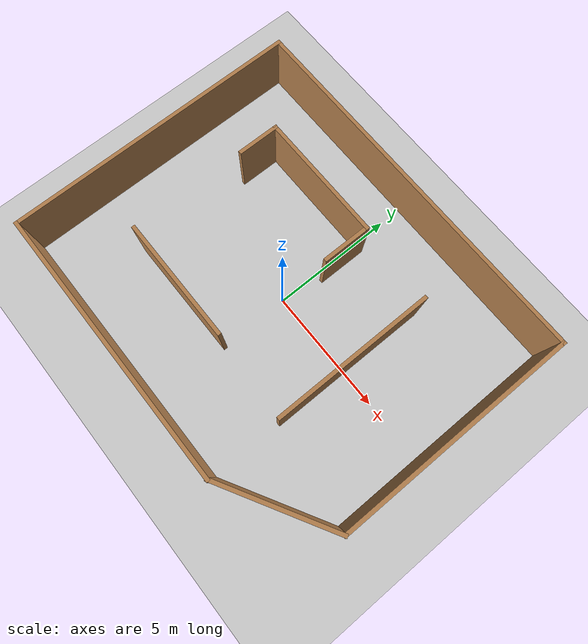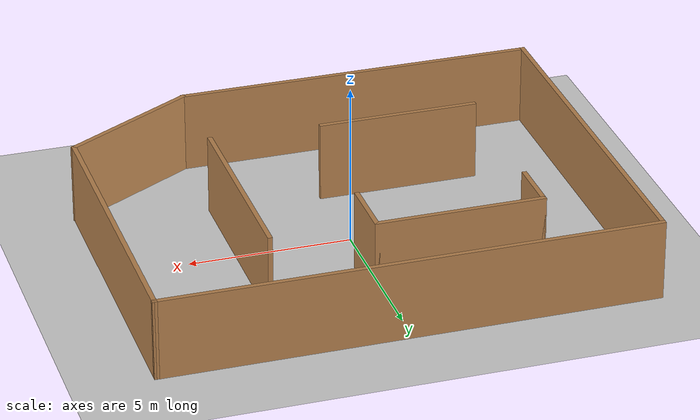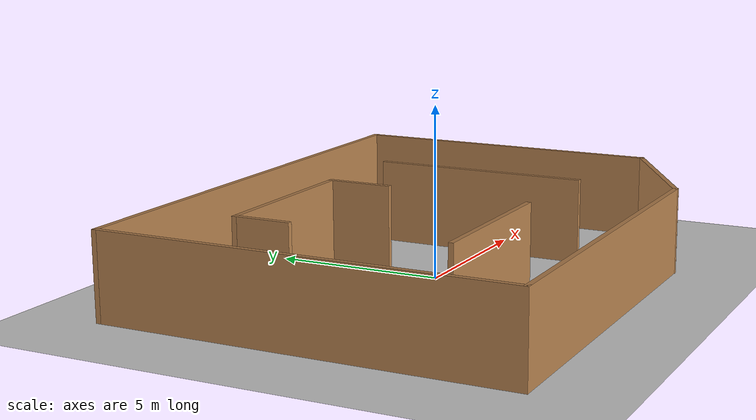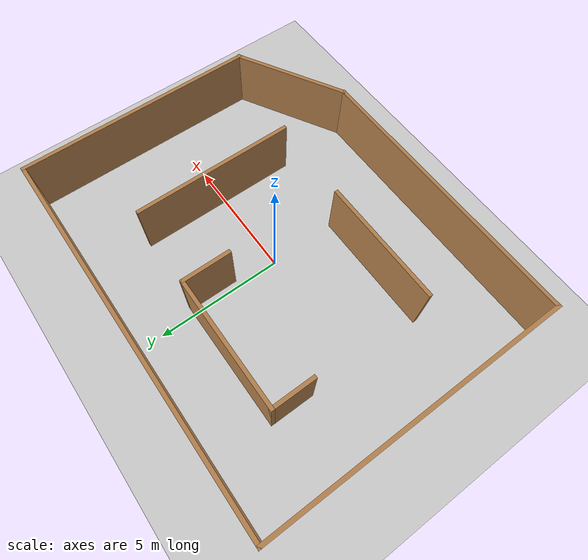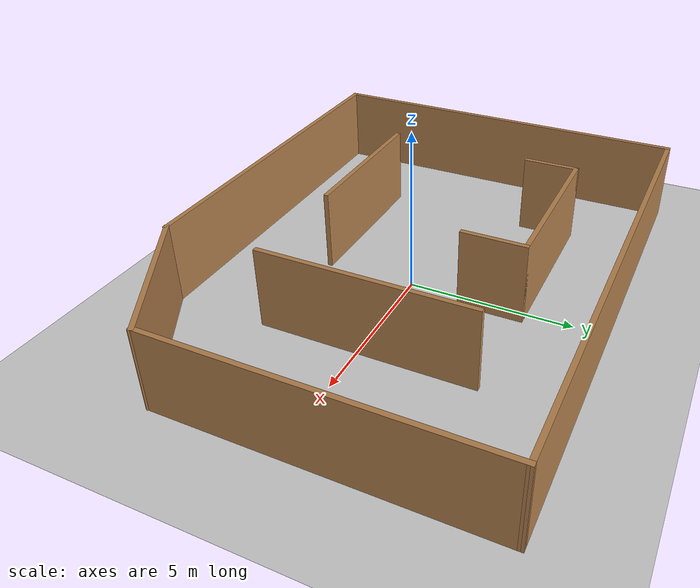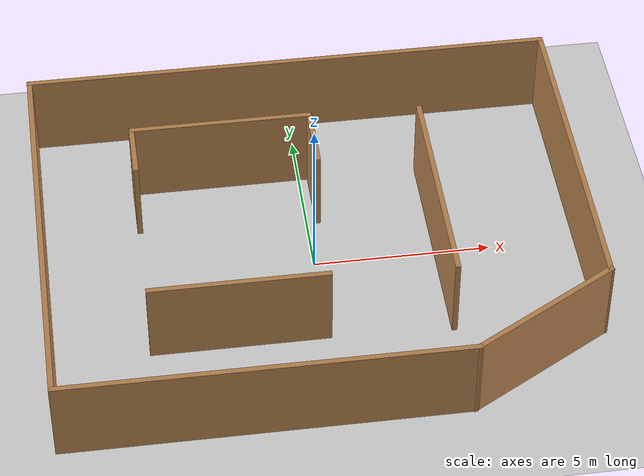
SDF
<?xml version="1.0" ?>
<sdf version="1.4">
  <world name="simple_map">
    <physics type="ode">
      <ode>
        <solver>
          <type>world</type>
        </solver>
        <constraints>
          <contact_max_correcting_vel>0.1</contact_max_correcting_vel>
          <contact_surface_layer>0.0001</contact_surface_layer>
        </constraints>
      </ode>
      <max_step_size>0.001</max_step_size>
      <real_time_factor>1</real_time_factor>
      <real_time_update_rate>1000</real_time_update_rate>
    </physics>
    <gravity>0.0 0.0 -9.81</gravity>
    <scene>
      <sky>
        <clouds>
          <speed>12</speed>
        </clouds>
      </sky>
    </scene>
    <!-- Focus camera on the maze -->
    <gui fullscreen='0'>
      <camera name='user_camera'>
        <pose>0 0 35 0 1.570796327 1.570796327</pose>
        <view_controller>orbit</view_controller>
        <projection_type>orthographic</projection_type>
      </camera>
    </gui>
    <!-- Light Source -->
    <light type="directional" name="sun">
      <cast_shadows>true</cast_shadows>
      <pose>0 0 100 0 0 0</pose>
      <diffuse>0.9 0.9 0.9 1</diffuse>
      <specular>0.1 0.1 0.1 1</specular>
      <attenuation>
        <range>1000</range>
        <constant>0.9</constant>
        <linear>0.01</linear>
        <quadratic>0.001</quadratic>
      </attenuation>
      <direction>-0.2 0.0 -1.0</direction>
    </light>
    <!-- Point Light Source -->
    <light type="point" name="light_bulb">
      <cast_shadows>false</cast_shadows>
      <pose>0 0 10 0 0 0</pose>
      <diffuse>0.5 0.5 0.5 1</diffuse>
      <specular>0.0 0.0 0.0 1</specular>
      <attenuation>
        <range>80</range>
        <constant>0.9</constant>
        <linear>0.01</linear>
        <quadratic>0.001</quadratic>
      </attenuation>
    </light>
    <!-- A ground plane -->
    <include>
      <uri>model://ground_plane</uri>
    </include>
    <!-- The map -->
    <include>
      <uri>model://simple_map</uri>
      <pose>0 0 0 0 0 0</pose>
    </include>
  </world>
</sdf>

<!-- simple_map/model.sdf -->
<sdf version='1.7'>
  <model name='simple_map'>
    <pose>-3.42335 -2.86256 0 0 -0 0</pose>
    <link name='Wall_10'>
      <collision name='Wall_10_Collision'>
        <geometry>
          <box>
            <size>1.75 0.15 2.5</size>
          </box>
        </geometry>
        <pose>0 0 1.25 0 -0 0</pose>
      </collision>
      <visual name='Wall_10_Visual'>
        <pose>0 0 1.25 0 -0 0</pose>
        <geometry>
          <box>
            <size>1.75 0.15 2.5</size>
          </box>
        </geometry>
        <material>
          <script>
            <uri>file://media/materials/scripts/gazebo.material</uri>
            <name>Gazebo/Wood</name>
          </script>
          <ambient>0.921569 0.807843 0.615686 1</ambient>
        </material>
        <meta>
          <layer>0</layer>
        </meta>
      </visual>
      <pose>-4.77646 2.74651 0 0 -0 -1.5708</pose>
    </link>
    <link name='Wall_12'>
      <collision name='Wall_12_Collision'>
        <geometry>
          <box>
            <size>5 0.15 2.5</size>
          </box>
        </geometry>
        <pose>0 0 1.25 0 -0 0</pose>
      </collision>
      <visual name='Wall_12_Visual'>
        <pose>0 0 1.25 0 -0 0</pose>
        <geometry>
          <box>
            <size>5 0.15 2.5</size>
          </box>
        </geometry>
        <material>
          <script>
            <uri>file://media/materials/scripts/gazebo.material</uri>
            <name>Gazebo/Wood</name>
          </script>
          <ambient>0.435294 0.796078 0.67451 1</ambient>
        </material>
        <meta>
          <layer>0</layer>
        </meta>
      </visual>
      <pose>-2.38664 -2.78567 0 0 -0 0</pose>
    </link>
    <link name='Wall_14'>
      <collision name='Wall_14_Collision'>
        <geometry>
          <box>
            <size>6.5 0.15 2.5</size>
          </box>
        </geometry>
        <pose>0 0 1.25 0 -0 0</pose>
      </collision>
      <visual name='Wall_14_Visual'>
        <pose>0 0 1.25 0 -0 0</pose>
        <geometry>
          <box>
            <size>6.5 0.15 2.5</size>
          </box>
        </geometry>
        <material>
          <script>
            <uri>file://media/materials/scripts/gazebo.material</uri>
            <name>Gazebo/Wood</name>
          </script>
          <ambient>0.921569 0.807843 0.615686 1</ambient>
        </material>
        <meta>
          <layer>0</layer>
        </meta>
      </visual>
      <pose>3.49055 0.230791 0 0 -0 -1.5708</pose>
    </link>
    <link name='Wall_16'>
      <collision name='Wall_16_Collision'>
        <geometry>
          <box>
            <size>11.25 0.15 2.5</size>
          </box>
        </geometry>
        <pose>0 0 1.25 0 -0 0</pose>
      </collision>
      <visual name='Wall_16_Visual'>
        <pose>0 0 1.25 0 -0 0</pose>
        <geometry>
          <box>
            <size>11.25 0.15 2.5</size>
          </box>
        </geometry>
        <material>
          <script>
            <uri>file://media/materials/scripts/gazebo.material</uri>
            <name>Gazebo/Wood</name>
          </script>
          <ambient>0.996078 0.47451 0.0196078 1</ambient>
        </material>
        <meta>
          <layer>0</layer>
        </meta>
      </visual>
      <pose>-2.00558 -5.91134 0 0 -0 0</pose>
    </link>
    <link name='Wall_17'>
      <collision name='Wall_17_Collision'>
        <geometry>
          <box>
            <size>4.75 0.15 2.5</size>
          </box>
        </geometry>
        <pose>0 0 1.25 0 -0 0</pose>
      </collision>
      <visual name='Wall_17_Visual'>
        <pose>0 0 1.25 0 -0 0</pose>
        <geometry>
          <box>
            <size>4.75 0.15 2.5</size>
          </box>
        </geometry>
        <material>
          <script>
            <uri>file://media/materials/scripts/gazebo.material</uri>
            <name>Gazebo/Wood</name>
          </script>
          <ambient>0.996078 0.47451 0.0196078 1</ambient>
        </material>
        <meta>
          <layer>0</layer>
        </meta>
      </visual>
      <pose>5.53627 -4.76134 0 0 -0 0.523599</pose>
    </link>
    <link name='Wall_18'>
      <collision name='Wall_18_Collision'>
        <geometry>
          <box>
            <size>9.70001 0.15 2.5</size>
          </box>
        </geometry>
        <pose>0 0 1.25 0 -0 0</pose>
      </collision>
      <visual name='Wall_18_Visual'>
        <pose>0 0 1.25 0 -0 0</pose>
        <geometry>
          <box>
            <size>9.70001 0.15 2.5</size>
          </box>
        </geometry>
        <material>
          <script>
            <uri>file://media/materials/scripts/gazebo.material</uri>
            <name>Gazebo/Wood</name>
          </script>
          <ambient>0.996078 0.47451 0.0196078 1</ambient>
        </material>
        <meta>
          <layer>0</layer>
        </meta>
      </visual>
      <pose>7.53627 1.16366 0 0 -0 1.56909</pose>
    </link>
    <link name='Wall_2'>
      <collision name='Wall_2_Collision'>
        <geometry>
          <box>
            <size>12 0.15 2.5</size>
          </box>
        </geometry>
        <pose>0 0 1.25 0 -0 0</pose>
      </collision>
      <visual name='Wall_2_Visual'>
        <pose>0 0 1.25 0 -0 0</pose>
        <geometry>
          <box>
            <size>12 0.15 2.5</size>
          </box>
        </geometry>
        <material>
          <script>
            <uri>file://media/materials/scripts/gazebo.material</uri>
            <name>Gazebo/Wood</name>
          </script>
          <ambient>0.435294 0.796078 0.67451 1</ambient>
        </material>
        <meta>
          <layer>0</layer>
        </meta>
      </visual>
      <pose>-7.55558 0.013662 0 0 -0 -1.5708</pose>
    </link>
    <link name='Wall_5'>
      <collision name='Wall_5_Collision'>
        <geometry>
          <box>
            <size>15.25 0.15 2.5</size>
          </box>
        </geometry>
        <pose>0 0 1.25 0 -0 0</pose>
      </collision>
      <visual name='Wall_5_Visual'>
        <pose>0 0 1.25 0 -0 0</pose>
        <geometry>
          <box>
            <size>15.25 0.15 2.5</size>
          </box>
        </geometry>
        <material>
          <script>
            <uri>file://media/materials/scripts/gazebo.material</uri>
            <name>Gazebo/Wood</name>
          </script>
          <ambient>0.435294 0.796078 0.67451 1</ambient>
        </material>
        <meta>
          <layer>0</layer>
        </meta>
      </visual>
      <pose>-0.005584 5.93866 0 0 -0 3.14159</pose>
    </link>
    <link name='Wall_7'>
      <collision name='Wall_7_Collision'>
        <geometry>
          <box>
            <size>5.25 0.15 2.5</size>
          </box>
        </geometry>
        <pose>0 0 1.25 0 -0 0</pose>
      </collision>
      <visual name='Wall_7_Visual'>
        <pose>0 0 1.25 0 -0 0</pose>
        <geometry>
          <box>
            <size>5.25 0.15 2.5</size>
          </box>
        </geometry>
        <material>
          <script>
            <uri>file://media/materials/scripts/gazebo.material</uri>
            <name>Gazebo/Wood</name>
          </script>
          <ambient>0.921569 0.807843 0.615686 1</ambient>
        </material>
        <meta>
          <layer>0</layer>
        </meta>
      </visual>
      <pose>-2.22646 3.54651 0 0 -0 0</pose>
    </link>
    <link name='Wall_8'>
      <collision name='Wall_8_Collision'>
        <geometry>
          <box>
            <size>2 0.15 2.5</size>
          </box>
        </geometry>
        <pose>0 0 1.25 0 -0 0</pose>
      </collision>
      <visual name='Wall_8_Visual'>
        <pose>0 0 1.25 0 -0 0</pose>
        <geometry>
          <box>
            <size>2 0.15 2.5</size>
          </box>
        </geometry>
        <material>
          <script>
            <uri>file://media/materials/scripts/gazebo.material</uri>
            <name>Gazebo/Wood</name>
          </script>
          <ambient>0.921569 0.807843 0.615686 1</ambient>
        </material>
        <meta>
          <layer>0</layer>
        </meta>
      </visual>
      <pose>0.323539 2.62151 0 0 -0 -1.5708</pose>
    </link>
    <static>1</static>
  </model>
</sdf>
